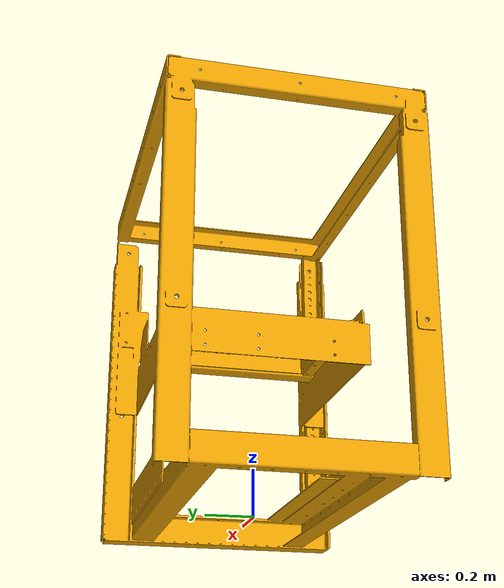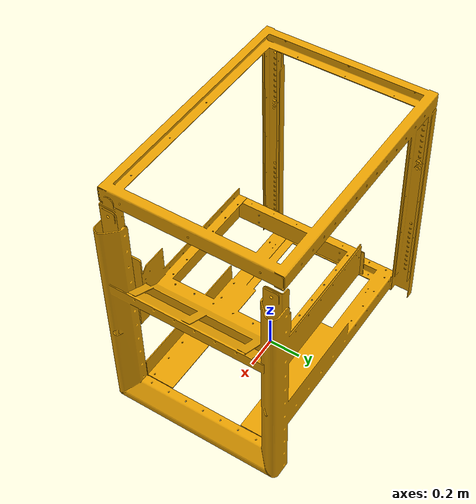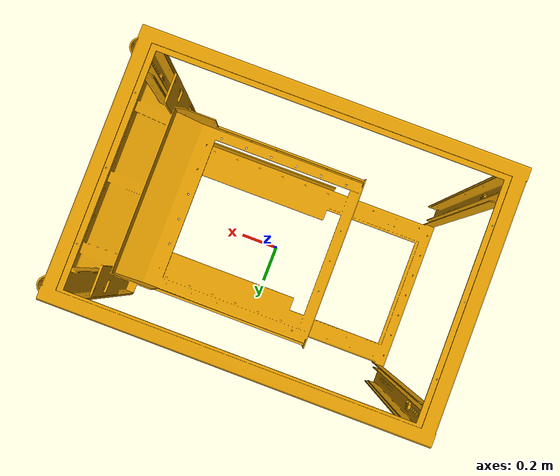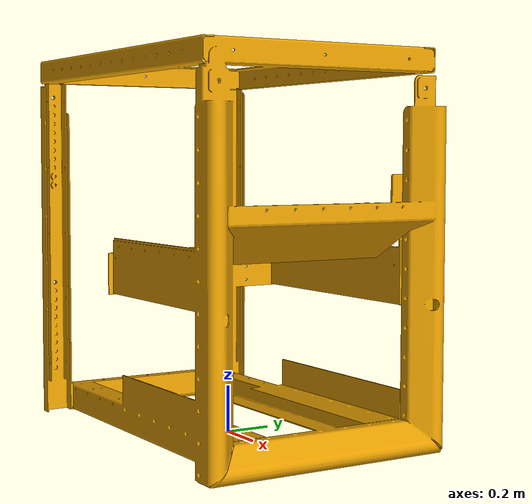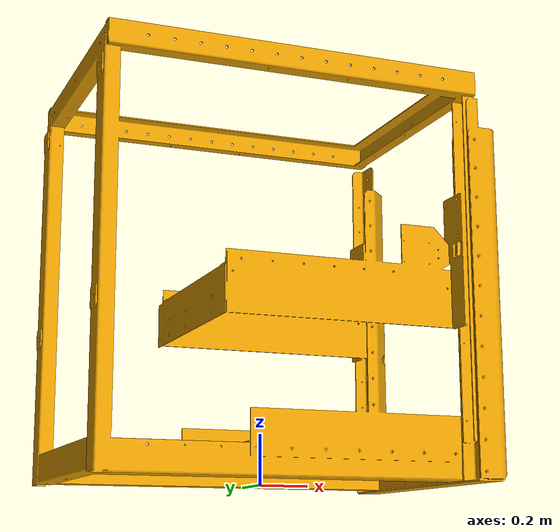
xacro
<?xml version="1.0"?>
<robot name="tms" xmlns:xacro="http://www.ros.org/wiki/xacro">

  <!-- Fluid Density of Water (kg/m³) -->
  <xacro:property name="fluid_density" value="1028"/>

  <!-- Scaling Factor for the TMS. Greater size means it's easier to dock -->
  <xacro:property name="scale_factor" value="1"/> <!-- Change to scale up/down -->

  <!-- Original Dimensions of the TMS -->
  <xacro:property name="size_x_orig" value="1.64"/>
  <xacro:property name="size_y_orig" value="1.07"/>
  <xacro:property name="size_z_orig" value="1.62"/>

  <!-- Scaled Dimensions -->
  <xacro:property name="size_x" value="${size_x_orig * scale_factor}"/>
  <xacro:property name="size_y" value="${size_y_orig * scale_factor}"/>
  <xacro:property name="size_z" value="${size_z_orig * scale_factor}"/>

  <!-- Mass (Scaled) Mass scales with the cube of the linear dimension. -->
  <xacro:property name="mass" value="${550 * (scale_factor * scale_factor * scale_factor)}"/>

  <!-- Volume (to ensure neutral buoyancy) -->
  <xacro:property name="volume" value="${mass / fluid_density}"/>

  <!-- Center of Buoyancy (adjusted based on height) -->
  <xacro:property name="cob_z" value="${0.5 * size_z}"/>

  <!-- Inertia Calculation -->
  <xacro:property name="ixx" value="${(1/12) * mass * (size_y * size_y + size_z * size_z)}"/>
  <xacro:property name="iyy" value="${(1/12) * mass * (size_x * size_x + size_z * size_z)}"/>
  <xacro:property name="izz" value="${(1/12) * mass * (size_x * size_x + size_y * size_y)}"/>

  <link name="base_link">
    <inertial>
      <mass value="${mass}"/>
      <origin xyz="0 0 0" rpy="0 0 0"/>
      <inertia ixx="${ixx}" ixy="0.0" ixz="0.0" iyy="${iyy}" iyz="0.0" izz="${izz}"/>
    </inertial>

    <!-- Visual Representation -->
    <visual>
      <origin xyz="0 0 0" rpy="0 0 0"/>
      <geometry>
        <mesh filename="package://deep_ocean/meshes/tms_visual.dae" scale="${scale_factor} ${scale_factor} ${scale_factor}"/>
      </geometry>
    </visual>

    <!-- Collision Geometry -->
    <collision>
      <origin xyz="0 0 0" rpy="0 0 0"/>
      <geometry>
        <mesh filename="package://deep_ocean/meshes/tms_collision.stl" scale="${scale_factor} ${scale_factor} ${scale_factor}"/>
      </geometry>
    </collision>
  </link>

  <gazebo>
    <plugin name="uuv_plugin" filename="libuuv_underwater_object_ros_plugin.so">
      <fluid_density>${fluid_density}</fluid_density>
      <flow_velocity_topic>hydrodynamics/current_velocity</flow_velocity_topic>
      <debug>0</debug>
      <link name="base_link">
        <neutrally_buoyant>0</neutrally_buoyant>  <!-- Ensures the TMS does not sink or float, use 0 for it to use mass and volume to calculate if it sinks or floats -->
        <volume>${volume}</volume>
        <box>
          <width>${size_x}</width>
          <length>${size_y}</length>
          <height>${size_z}</height>
        </box>
        <center_of_buoyancy>0 0 ${cob_z}</center_of_buoyancy>

        <!-- Hydrodynamic Model, can also choose Fossen type and add the matrices manually. -->
        <hydrodynamic_model>

          <type>box</type>
            <width>${size_x}</width>
            <length>${size_y}</length>
            <height>${size_z}</height>

        </hydrodynamic_model>

      </link>
    </plugin>
  </gazebo>
</robot>
